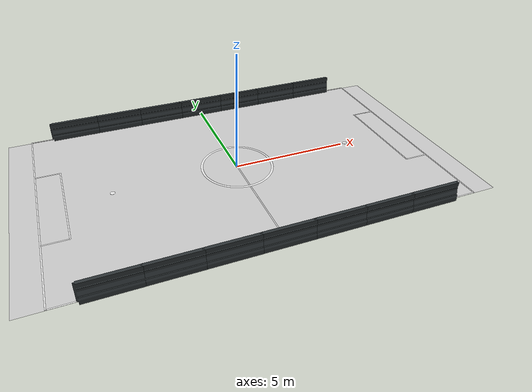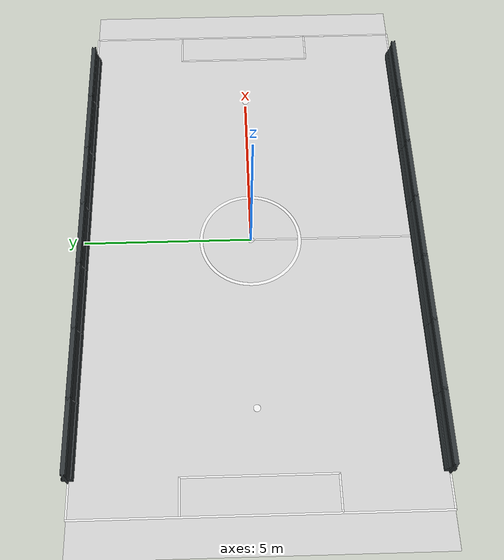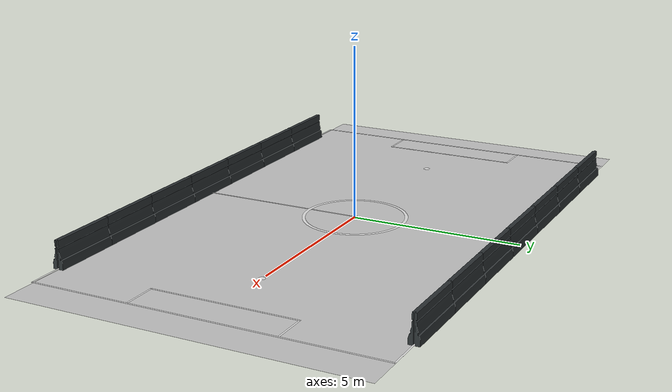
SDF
<sdf version="1.7">
 <model name="Soccer_Field_walls">
  <model name="Barrier_clone_clone">
   <link name="link">
    <inertial>
     <mass>1</mass>
     <inertia><ixx>1</ixx><ixy>0</ixy><ixz>0</ixz><iyy>1</iyy><iyz>0</iyz><izz>1</izz></inertia>
    </inertial>
    <visual name="visual">
     <geometry>
      <mesh>
       <uri>model://drc_practice_orange_jersey_barrier/meshes/jersey_barrier.dae</uri>
       <scale>0.5 1.15 0.75</scale>
      </mesh>
     </geometry>
     <material>
      <shader type="pixel"><normal_map>__default__</normal_map></shader>
      <script><name>ModelPreview_8::link::visual_MATERIAL_</name><uri>__default__</uri></script>
      <ambient>0.533 0.541 0.522 1</ambient>
      <diffuse>0.18 0.204 0.212 1</diffuse>
      <specular>0 0 0 1</specular>
      <emissive>0 0 0 1</emissive>
     </material>
    </visual>
    <collision name="collision">
     <geometry>
      <mesh>
       <uri>/home/llyttle/.gazebo/models/drc_practice_orange_jersey_barrier/meshes/jersey_barrier.dae</uri>
       <scale>0.5 1.15 0.75</scale>
      </mesh>
     </geometry>
     <surface>
      <friction>
       <ode><mu>1</mu><mu2>1</mu2><fdir1>0 0 0</fdir1><slip1>0</slip1><slip2>0</slip2></ode>
       <torsional>
        <coefficient>1</coefficient>
        <patch_radius>0</patch_radius>
        <surface_radius>0</surface_radius>
        <use_patch_radius>1</use_patch_radius>
        <ode><slip>0</slip></ode>
       </torsional>
      </friction>
      <bounce><restitution_coefficient>0</restitution_coefficient><threshold>1e+06</threshold></bounce>
      <contact>
       <collide_without_contact>0</collide_without_contact>
       <collide_without_contact_bitmask>1</collide_without_contact_bitmask>
       <collide_bitmask>1</collide_bitmask>
       <ode>
        <soft_cfm>0</soft_cfm>
        <soft_erp>0.2</soft_erp>
        <kp>1e+13</kp>
        <kd>1</kd>
        <max_vel>0.01</max_vel>
        <min_depth>0</min_depth>
       </ode>
       <bullet>
        <split_impulse>1</split_impulse>
        <split_impulse_penetration_threshold>-0.01</split_impulse_penetration_threshold>
        <soft_cfm>0</soft_cfm>
        <soft_erp>0.2</soft_erp>
        <kp>1e+13</kp>
        <kd>1</kd>
       </bullet>
      </contact>
     </surface>
    </collision>
   </link>
   <static>1</static>
   <pose>5.99542 -4.99605 0 0 0 -1.5708</pose>
  </model>
  <model name="Barrier_clone_clone_clone">
   <link name="link">
    <inertial>
     <mass>1</mass>
     <inertia><ixx>1</ixx><ixy>0</ixy><ixz>0</ixz><iyy>1</iyy><iyz>0</iyz><izz>1</izz></inertia>
    </inertial>
    <visual name="visual">
     <geometry>
      <mesh>
       <uri>model://drc_practice_orange_jersey_barrier/meshes/jersey_barrier.dae</uri>
       <scale>0.5 1.15 0.75</scale>
      </mesh>
     </geometry>
     <material>
      <shader type="pixel"><normal_map>__default__</normal_map></shader>
      <script><name>ModelPreview_8::link::visual_MATERIAL_</name><uri>__default__</uri></script>
      <ambient>0.533 0.541 0.522 1</ambient>
      <diffuse>0.18 0.204 0.212 1</diffuse>
      <specular>0 0 0 1</specular>
      <emissive>0 0 0 1</emissive>
     </material>
    </visual>
    <collision name="collision">
     <geometry>
      <mesh>
       <uri>/home/llyttle/.gazebo/models/drc_practice_orange_jersey_barrier/meshes/jersey_barrier.dae</uri>
       <scale>0.5 1.15 0.75</scale>
      </mesh>
     </geometry>
     <surface>
      <friction>
       <ode><mu>1</mu><mu2>1</mu2><fdir1>0 0 0</fdir1><slip1>0</slip1><slip2>0</slip2></ode>
       <torsional>
        <coefficient>1</coefficient>
        <patch_radius>0</patch_radius>
        <surface_radius>0</surface_radius>
        <use_patch_radius>1</use_patch_radius>
        <ode><slip>0</slip></ode>
       </torsional>
      </friction>
      <bounce><restitution_coefficient>0</restitution_coefficient><threshold>1e+06</threshold></bounce>
      <contact>
       <collide_without_contact>0</collide_without_contact>
       <collide_without_contact_bitmask>1</collide_without_contact_bitmask>
       <collide_bitmask>1</collide_bitmask>
       <ode>
        <soft_cfm>0</soft_cfm>
        <soft_erp>0.2</soft_erp>
        <kp>1e+13</kp>
        <kd>1</kd>
        <max_vel>0.01</max_vel>
        <min_depth>0</min_depth>
       </ode>
       <bullet>
        <split_impulse>1</split_impulse>
        <split_impulse_penetration_threshold>-0.01</split_impulse_penetration_threshold>
        <soft_cfm>0</soft_cfm>
        <soft_erp>0.2</soft_erp>
        <kp>1e+13</kp>
        <kd>1</kd>
       </bullet>
      </contact>
     </surface>
    </collision>
   </link>
   <static>1</static>
   <pose>3.99542 -4.99605 0 0 0 -1.5708</pose>
  </model>
  <model name="Barrier_clone_clone_clone_0">
   <link name="link">
    <inertial>
     <mass>1</mass>
     <inertia><ixx>1</ixx><ixy>0</ixy><ixz>0</ixz><iyy>1</iyy><iyz>0</iyz><izz>1</izz></inertia>
    </inertial>
    <visual name="visual">
     <geometry>
      <mesh>
       <uri>model://drc_practice_orange_jersey_barrier/meshes/jersey_barrier.dae</uri>
       <scale>0.5 1.15 0.75</scale>
      </mesh>
     </geometry>
     <material>
      <shader type="pixel"><normal_map>__default__</normal_map></shader>
      <script><name>ModelPreview_8::link::visual_MATERIAL_</name><uri>__default__</uri></script>
      <ambient>0.533 0.541 0.522 1</ambient>
      <diffuse>0.18 0.204 0.212 1</diffuse>
      <specular>0 0 0 1</specular>
      <emissive>0 0 0 1</emissive>
     </material>
    </visual>
    <collision name="collision">
     <geometry>
      <mesh>
       <uri>/home/llyttle/.gazebo/models/drc_practice_orange_jersey_barrier/meshes/jersey_barrier.dae</uri>
       <scale>0.5 1.15 0.75</scale>
      </mesh>
     </geometry>
     <surface>
      <friction>
       <ode><mu>1</mu><mu2>1</mu2><fdir1>0 0 0</fdir1><slip1>0</slip1><slip2>0</slip2></ode>
       <torsional>
        <coefficient>1</coefficient>
        <patch_radius>0</patch_radius>
        <surface_radius>0</surface_radius>
        <use_patch_radius>1</use_patch_radius>
        <ode><slip>0</slip></ode>
       </torsional>
      </friction>
      <bounce><restitution_coefficient>0</restitution_coefficient><threshold>1e+06</threshold></bounce>
      <contact>
       <collide_without_contact>0</collide_without_contact>
       <collide_without_contact_bitmask>1</collide_without_contact_bitmask>
       <collide_bitmask>1</collide_bitmask>
       <ode>
        <soft_cfm>0</soft_cfm>
        <soft_erp>0.2</soft_erp>
        <kp>1e+13</kp>
        <kd>1</kd>
        <max_vel>0.01</max_vel>
        <min_depth>0</min_depth>
       </ode>
       <bullet>
        <split_impulse>1</split_impulse>
        <split_impulse_penetration_threshold>-0.01</split_impulse_penetration_threshold>
        <soft_cfm>0</soft_cfm>
        <soft_erp>0.2</soft_erp>
        <kp>1e+13</kp>
        <kd>1</kd>
       </bullet>
      </contact>
     </surface>
    </collision>
   </link>
   <static>1</static>
   <pose>1.99542 -4.99605 0 0 0 -1.5708</pose>
  </model>
  <model name="Barrier_clone_clone_clone_1">
   <link name="link">
    <inertial>
     <mass>1</mass>
     <inertia><ixx>1</ixx><ixy>0</ixy><ixz>0</ixz><iyy>1</iyy><iyz>0</iyz><izz>1</izz></inertia>
    </inertial>
    <visual name="visual">
     <geometry>
      <mesh>
       <uri>model://drc_practice_orange_jersey_barrier/meshes/jersey_barrier.dae</uri>
       <scale>0.5 1.15 0.75</scale>
      </mesh>
     </geometry>
     <material>
      <shader type="pixel"><normal_map>__default__</normal_map></shader>
      <script><name>ModelPreview_8::link::visual_MATERIAL_</name><uri>__default__</uri></script>
      <ambient>0.533 0.541 0.522 1</ambient>
      <diffuse>0.18 0.204 0.212 1</diffuse>
      <specular>0 0 0 1</specular>
      <emissive>0 0 0 1</emissive>
     </material>
    </visual>
    <collision name="collision">
     <geometry>
      <mesh>
       <uri>/home/llyttle/.gazebo/models/drc_practice_orange_jersey_barrier/meshes/jersey_barrier.dae</uri>
       <scale>0.5 1.15 0.75</scale>
      </mesh>
     </geometry>
     <surface>
      <friction>
       <ode><mu>1</mu><mu2>1</mu2><fdir1>0 0 0</fdir1><slip1>0</slip1><slip2>0</slip2></ode>
       <torsional>
        <coefficient>1</coefficient>
        <patch_radius>0</patch_radius>
        <surface_radius>0</surface_radius>
        <use_patch_radius>1</use_patch_radius>
        <ode><slip>0</slip></ode>
       </torsional>
      </friction>
      <bounce><restitution_coefficient>0</restitution_coefficient><threshold>1e+06</threshold></bounce>
      <contact>
       <collide_without_contact>0</collide_without_contact>
       <collide_without_contact_bitmask>1</collide_without_contact_bitmask>
       <collide_bitmask>1</collide_bitmask>
       <ode>
        <soft_cfm>0</soft_cfm>
        <soft_erp>0.2</soft_erp>
        <kp>1e+13</kp>
        <kd>1</kd>
        <max_vel>0.01</max_vel>
        <min_depth>0</min_depth>
       </ode>
       <bullet>
        <split_impulse>1</split_impulse>
        <split_impulse_penetration_threshold>-0.01</split_impulse_penetration_threshold>
        <soft_cfm>0</soft_cfm>
        <soft_erp>0.2</soft_erp>
        <kp>1e+13</kp>
        <kd>1</kd>
       </bullet>
      </contact>
     </surface>
    </collision>
   </link>
   <static>1</static>
   <pose>-0.004578 -4.99605 0 0 0 -1.5708</pose>
  </model>
  <model name="Barrier_clone_clone_clone_10">
   <link name="link">
    <inertial>
     <mass>1</mass>
     <inertia><ixx>1</ixx><ixy>0</ixy><ixz>0</ixz><iyy>1</iyy><iyz>0</iyz><izz>1</izz></inertia>
    </inertial>
    <visual name="visual">
     <geometry>
      <mesh>
       <uri>model://drc_practice_orange_jersey_barrier/meshes/jersey_barrier.dae</uri>
       <scale>0.5 1.15 0.75</scale>
      </mesh>
     </geometry>
     <material>
      <shader type="pixel"><normal_map>__default__</normal_map></shader>
      <script><name>ModelPreview_8::link::visual_MATERIAL_</name><uri>__default__</uri></script>
      <ambient>0.533 0.541 0.522 1</ambient>
      <diffuse>0.18 0.204 0.212 1</diffuse>
      <specular>0 0 0 1</specular>
      <emissive>0 0 0 1</emissive>
     </material>
    </visual>
    <collision name="collision">
     <geometry>
      <mesh>
       <uri>/home/llyttle/.gazebo/models/drc_practice_orange_jersey_barrier/meshes/jersey_barrier.dae</uri>
       <scale>0.5 1.15 0.75</scale>
      </mesh>
     </geometry>
     <surface>
      <friction>
       <ode><mu>1</mu><mu2>1</mu2><fdir1>0 0 0</fdir1><slip1>0</slip1><slip2>0</slip2></ode>
       <torsional>
        <coefficient>1</coefficient>
        <patch_radius>0</patch_radius>
        <surface_radius>0</surface_radius>
        <use_patch_radius>1</use_patch_radius>
        <ode><slip>0</slip></ode>
       </torsional>
      </friction>
      <bounce><restitution_coefficient>0</restitution_coefficient><threshold>1e+06</threshold></bounce>
      <contact>
       <collide_without_contact>0</collide_without_contact>
       <collide_without_contact_bitmask>1</collide_without_contact_bitmask>
       <collide_bitmask>1</collide_bitmask>
       <ode>
        <soft_cfm>0</soft_cfm>
        <soft_erp>0.2</soft_erp>
        <kp>1e+13</kp>
        <kd>1</kd>
        <max_vel>0.01</max_vel>
        <min_depth>0</min_depth>
       </ode>
       <bullet>
        <split_impulse>1</split_impulse>
        <split_impulse_penetration_threshold>-0.01</split_impulse_penetration_threshold>
        <soft_cfm>0</soft_cfm>
        <soft_erp>0.2</soft_erp>
        <kp>1e+13</kp>
        <kd>1</kd>
       </bullet>
      </contact>
     </surface>
    </collision>
   </link>
   <static>1</static>
   <pose>-4.00458 5.00395 0 0 0 -1.5708</pose>
  </model>
  <model name="Barrier_clone_clone_clone_11">
   <link name="link">
    <inertial>
     <mass>1</mass>
     <inertia><ixx>1</ixx><ixy>0</ixy><ixz>0</ixz><iyy>1</iyy><iyz>0</iyz><izz>1</izz></inertia>
    </inertial>
    <visual name="visual">
     <geometry>
      <mesh>
       <uri>model://drc_practice_orange_jersey_barrier/meshes/jersey_barrier.dae</uri>
       <scale>0.5 1.15 0.75</scale>
      </mesh>
     </geometry>
     <material>
      <shader type="pixel"><normal_map>__default__</normal_map></shader>
      <script><name>ModelPreview_8::link::visual_MATERIAL_</name><uri>__default__</uri></script>
      <ambient>0.533 0.541 0.522 1</ambient>
      <diffuse>0.18 0.204 0.212 1</diffuse>
      <specular>0 0 0 1</specular>
      <emissive>0 0 0 1</emissive>
     </material>
    </visual>
    <collision name="collision">
     <geometry>
      <mesh>
       <uri>/home/llyttle/.gazebo/models/drc_practice_orange_jersey_barrier/meshes/jersey_barrier.dae</uri>
       <scale>0.5 1.15 0.75</scale>
      </mesh>
     </geometry>
     <surface>
      <friction>
       <ode><mu>1</mu><mu2>1</mu2><fdir1>0 0 0</fdir1><slip1>0</slip1><slip2>0</slip2></ode>
       <torsional>
        <coefficient>1</coefficient>
        <patch_radius>0</patch_radius>
        <surface_radius>0</surface_radius>
        <use_patch_radius>1</use_patch_radius>
        <ode><slip>0</slip></ode>
       </torsional>
      </friction>
      <bounce><restitution_coefficient>0</restitution_coefficient><threshold>1e+06</threshold></bounce>
      <contact>
       <collide_without_contact>0</collide_without_contact>
       <collide_without_contact_bitmask>1</collide_without_contact_bitmask>
       <collide_bitmask>1</collide_bitmask>
       <ode>
        <soft_cfm>0</soft_cfm>
        <soft_erp>0.2</soft_erp>
        <kp>1e+13</kp>
        <kd>1</kd>
        <max_vel>0.01</max_vel>
        <min_depth>0</min_depth>
       </ode>
       <bullet>
        <split_impulse>1</split_impulse>
        <split_impulse_penetration_threshold>-0.01</split_impulse_penetration_threshold>
        <soft_cfm>0</soft_cfm>
        <soft_erp>0.2</soft_erp>
        <kp>1e+13</kp>
        <kd>1</kd>
       </bullet>
      </contact>
     </surface>
    </collision>
   </link>
   <static>1</static>
   <pose>-6.00458 5.00395 0 0 0 -1.5708</pose>
  </model>
  <model name="Barrier_clone_clone_clone_2">
   <link name="link">
    <inertial>
     <mass>1</mass>
     <inertia><ixx>1</ixx><ixy>0</ixy><ixz>0</ixz><iyy>1</iyy><iyz>0</iyz><izz>1</izz></inertia>
    </inertial>
    <visual name="visual">
     <geometry>
      <mesh>
       <uri>model://drc_practice_orange_jersey_barrier/meshes/jersey_barrier.dae</uri>
       <scale>0.5 1.15 0.75</scale>
      </mesh>
     </geometry>
     <material>
      <shader type="pixel"><normal_map>__default__</normal_map></shader>
      <script><name>ModelPreview_8::link::visual_MATERIAL_</name><uri>__default__</uri></script>
      <ambient>0.533 0.541 0.522 1</ambient>
      <diffuse>0.18 0.204 0.212 1</diffuse>
      <specular>0 0 0 1</specular>
      <emissive>0 0 0 1</emissive>
     </material>
    </visual>
    <collision name="collision">
     <geometry>
      <mesh>
       <uri>/home/llyttle/.gazebo/models/drc_practice_orange_jersey_barrier/meshes/jersey_barrier.dae</uri>
       <scale>0.5 1.15 0.75</scale>
      </mesh>
     </geometry>
     <surface>
      <friction>
       <ode><mu>1</mu><mu2>1</mu2><fdir1>0 0 0</fdir1><slip1>0</slip1><slip2>0</slip2></ode>
       <torsional>
        <coefficient>1</coefficient>
        <patch_radius>0</patch_radius>
        <surface_radius>0</surface_radius>
        <use_patch_radius>1</use_patch_radius>
        <ode><slip>0</slip></ode>
       </torsional>
      </friction>
      <bounce><restitution_coefficient>0</restitution_coefficient><threshold>1e+06</threshold></bounce>
      <contact>
       <collide_without_contact>0</collide_without_contact>
       <collide_without_contact_bitmask>1</collide_without_contact_bitmask>
       <collide_bitmask>1</collide_bitmask>
       <ode>
        <soft_cfm>0</soft_cfm>
        <soft_erp>0.2</soft_erp>
        <kp>1e+13</kp>
        <kd>1</kd>
        <max_vel>0.01</max_vel>
        <min_depth>0</min_depth>
       </ode>
       <bullet>
        <split_impulse>1</split_impulse>
        <split_impulse_penetration_threshold>-0.01</split_impulse_penetration_threshold>
        <soft_cfm>0</soft_cfm>
        <soft_erp>0.2</soft_erp>
        <kp>1e+13</kp>
        <kd>1</kd>
       </bullet>
      </contact>
     </surface>
    </collision>
   </link>
   <static>1</static>
   <pose>-2.00458 -4.99605 0 0 0 -1.5708</pose>
  </model>
  <model name="Barrier_clone_clone_clone_3">
   <link name="link">
    <inertial>
     <mass>1</mass>
     <inertia><ixx>1</ixx><ixy>0</ixy><ixz>0</ixz><iyy>1</iyy><iyz>0</iyz><izz>1</izz></inertia>
    </inertial>
    <visual name="visual">
     <geometry>
      <mesh>
       <uri>model://drc_practice_orange_jersey_barrier/meshes/jersey_barrier.dae</uri>
       <scale>0.5 1.15 0.75</scale>
      </mesh>
     </geometry>
     <material>
      <shader type="pixel"><normal_map>__default__</normal_map></shader>
      <script><name>ModelPreview_8::link::visual_MATERIAL_</name><uri>__default__</uri></script>
      <ambient>0.533 0.541 0.522 1</ambient>
      <diffuse>0.18 0.204 0.212 1</diffuse>
      <specular>0 0 0 1</specular>
      <emissive>0 0 0 1</emissive>
     </material>
    </visual>
    <collision name="collision">
     <geometry>
      <mesh>
       <uri>/home/llyttle/.gazebo/models/drc_practice_orange_jersey_barrier/meshes/jersey_barrier.dae</uri>
       <scale>0.5 1.15 0.75</scale>
      </mesh>
     </geometry>
     <surface>
      <friction>
       <ode><mu>1</mu><mu2>1</mu2><fdir1>0 0 0</fdir1><slip1>0</slip1><slip2>0</slip2></ode>
       <torsional>
        <coefficient>1</coefficient>
        <patch_radius>0</patch_radius>
        <surface_radius>0</surface_radius>
        <use_patch_radius>1</use_patch_radius>
        <ode><slip>0</slip></ode>
       </torsional>
      </friction>
      <bounce><restitution_coefficient>0</restitution_coefficient><threshold>1e+06</threshold></bounce>
      <contact>
       <collide_without_contact>0</collide_without_contact>
       <collide_without_contact_bitmask>1</collide_without_contact_bitmask>
       <collide_bitmask>1</collide_bitmask>
       <ode>
        <soft_cfm>0</soft_cfm>
        <soft_erp>0.2</soft_erp>
        <kp>1e+13</kp>
        <kd>1</kd>
        <max_vel>0.01</max_vel>
        <min_depth>0</min_depth>
       </ode>
       <bullet>
        <split_impulse>1</split_impulse>
        <split_impulse_penetration_threshold>-0.01</split_impulse_penetration_threshold>
        <soft_cfm>0</soft_cfm>
        <soft_erp>0.2</soft_erp>
        <kp>1e+13</kp>
        <kd>1</kd>
       </bullet>
      </contact>
     </surface>
    </collision>
   </link>
   <static>1</static>
   <pose>-4.00458 -4.99605 0 0 0 -1.5708</pose>
  </model>
  <model name="Barrier_clone_clone_clone_4">
   <link name="link">
    <inertial>
     <mass>1</mass>
     <inertia><ixx>1</ixx><ixy>0</ixy><ixz>0</ixz><iyy>1</iyy><iyz>0</iyz><izz>1</izz></inertia>
    </inertial>
    <visual name="visual">
     <geometry>
      <mesh>
       <uri>model://drc_practice_orange_jersey_barrier/meshes/jersey_barrier.dae</uri>
       <scale>0.5 1.15 0.75</scale>
      </mesh>
     </geometry>
     <material>
      <shader type="pixel"><normal_map>__default__</normal_map></shader>
      <script><name>ModelPreview_8::link::visual_MATERIAL_</name><uri>__default__</uri></script>
      <ambient>0.533 0.541 0.522 1</ambient>
      <diffuse>0.18 0.204 0.212 1</diffuse>
      <specular>0 0 0 1</specular>
      <emissive>0 0 0 1</emissive>
     </material>
    </visual>
    <collision name="collision">
     <geometry>
      <mesh>
       <uri>/home/llyttle/.gazebo/models/drc_practice_orange_jersey_barrier/meshes/jersey_barrier.dae</uri>
       <scale>0.5 1.15 0.75</scale>
      </mesh>
     </geometry>
     <surface>
      <friction>
       <ode><mu>1</mu><mu2>1</mu2><fdir1>0 0 0</fdir1><slip1>0</slip1><slip2>0</slip2></ode>
       <torsional>
        <coefficient>1</coefficient>
        <patch_radius>0</patch_radius>
        <surface_radius>0</surface_radius>
        <use_patch_radius>1</use_patch_radius>
        <ode><slip>0</slip></ode>
       </torsional>
      </friction>
      <bounce><restitution_coefficient>0</restitution_coefficient><threshold>1e+06</threshold></bounce>
      <contact>
       <collide_without_contact>0</collide_without_contact>
       <collide_without_contact_bitmask>1</collide_without_contact_bitmask>
       <collide_bitmask>1</collide_bitmask>
       <ode>
        <soft_cfm>0</soft_cfm>
        <soft_erp>0.2</soft_erp>
        <kp>1e+13</kp>
        <kd>1</kd>
        <max_vel>0.01</max_vel>
        <min_depth>0</min_depth>
       </ode>
       <bullet>
        <split_impulse>1</split_impulse>
        <split_impulse_penetration_threshold>-0.01</split_impulse_penetration_threshold>
        <soft_cfm>0</soft_cfm>
        <soft_erp>0.2</soft_erp>
        <kp>1e+13</kp>
        <kd>1</kd>
       </bullet>
      </contact>
     </surface>
    </collision>
   </link>
   <static>1</static>
   <pose>-6.00458 -4.99605 0 0 0 -1.5708</pose>
  </model>
  <model name="Barrier_clone_clone_clone_5">
   <link name="link">
    <inertial>
     <mass>1</mass>
     <inertia><ixx>1</ixx><ixy>0</ixy><ixz>0</ixz><iyy>1</iyy><iyz>0</iyz><izz>1</izz></inertia>
    </inertial>
    <visual name="visual">
     <geometry>
      <mesh>
       <uri>model://drc_practice_orange_jersey_barrier/meshes/jersey_barrier.dae</uri>
       <scale>0.5 1.15 0.75</scale>
      </mesh>
     </geometry>
     <material>
      <shader type="pixel"><normal_map>__default__</normal_map></shader>
      <script><name>ModelPreview_8::link::visual_MATERIAL_</name><uri>__default__</uri></script>
      <ambient>0.533 0.541 0.522 1</ambient>
      <diffuse>0.18 0.204 0.212 1</diffuse>
      <specular>0 0 0 1</specular>
      <emissive>0 0 0 1</emissive>
     </material>
    </visual>
    <collision name="collision">
     <geometry>
      <mesh>
       <uri>/home/llyttle/.gazebo/models/drc_practice_orange_jersey_barrier/meshes/jersey_barrier.dae</uri>
       <scale>0.5 1.15 0.75</scale>
      </mesh>
     </geometry>
     <surface>
      <friction>
       <ode><mu>1</mu><mu2>1</mu2><fdir1>0 0 0</fdir1><slip1>0</slip1><slip2>0</slip2></ode>
       <torsional>
        <coefficient>1</coefficient>
        <patch_radius>0</patch_radius>
        <surface_radius>0</surface_radius>
        <use_patch_radius>1</use_patch_radius>
        <ode><slip>0</slip></ode>
       </torsional>
      </friction>
      <bounce><restitution_coefficient>0</restitution_coefficient><threshold>1e+06</threshold></bounce>
      <contact>
       <collide_without_contact>0</collide_without_contact>
       <collide_without_contact_bitmask>1</collide_without_contact_bitmask>
       <collide_bitmask>1</collide_bitmask>
       <ode>
        <soft_cfm>0</soft_cfm>
        <soft_erp>0.2</soft_erp>
        <kp>1e+13</kp>
        <kd>1</kd>
        <max_vel>0.01</max_vel>
        <min_depth>0</min_depth>
       </ode>
       <bullet>
        <split_impulse>1</split_impulse>
        <split_impulse_penetration_threshold>-0.01</split_impulse_penetration_threshold>
        <soft_cfm>0</soft_cfm>
        <soft_erp>0.2</soft_erp>
        <kp>1e+13</kp>
        <kd>1</kd>
       </bullet>
      </contact>
     </surface>
    </collision>
   </link>
   <static>1</static>
   <pose>5.99542 5.00395 0 0 0 -1.5708</pose>
  </model>
  <model name="Barrier_clone_clone_clone_6">
   <link name="link">
    <inertial>
     <mass>1</mass>
     <inertia><ixx>1</ixx><ixy>0</ixy><ixz>0</ixz><iyy>1</iyy><iyz>0</iyz><izz>1</izz></inertia>
    </inertial>
    <visual name="visual">
     <geometry>
      <mesh>
       <uri>model://drc_practice_orange_jersey_barrier/meshes/jersey_barrier.dae</uri>
       <scale>0.5 1.15 0.75</scale>
      </mesh>
     </geometry>
     <material>
      <shader type="pixel"><normal_map>__default__</normal_map></shader>
      <script><name>ModelPreview_8::link::visual_MATERIAL_</name><uri>__default__</uri></script>
      <ambient>0.533 0.541 0.522 1</ambient>
      <diffuse>0.18 0.204 0.212 1</diffuse>
      <specular>0 0 0 1</specular>
      <emissive>0 0 0 1</emissive>
     </material>
    </visual>
    <collision name="collision">
     <geometry>
      <mesh>
       <uri>/home/llyttle/.gazebo/models/drc_practice_orange_jersey_barrier/meshes/jersey_barrier.dae</uri>
       <scale>0.5 1.15 0.75</scale>
      </mesh>
     </geometry>
     <surface>
      <friction>
       <ode><mu>1</mu><mu2>1</mu2><fdir1>0 0 0</fdir1><slip1>0</slip1><slip2>0</slip2></ode>
       <torsional>
        <coefficient>1</coefficient>
        <patch_radius>0</patch_radius>
        <surface_radius>0</surface_radius>
        <use_patch_radius>1</use_patch_radius>
        <ode><slip>0</slip></ode>
       </torsional>
      </friction>
      <bounce><restitution_coefficient>0</restitution_coefficient><threshold>1e+06</threshold></bounce>
      <contact>
       <collide_without_contact>0</collide_without_contact>
       <collide_without_contact_bitmask>1</collide_without_contact_bitmask>
       <collide_bitmask>1</collide_bitmask>
       <ode>
        <soft_cfm>0</soft_cfm>
        <soft_erp>0.2</soft_erp>
        <kp>1e+13</kp>
        <kd>1</kd>
        <max_vel>0.01</max_vel>
        <min_depth>0</min_depth>
       </ode>
       <bullet>
        <split_impulse>1</split_impulse>
        <split_impulse_penetration_threshold>-0.01</split_impulse_penetration_threshold>
        <soft_cfm>0</soft_cfm>
        <soft_erp>0.2</soft_erp>
        <kp>1e+13</kp>
        <kd>1</kd>
       </bullet>
      </contact>
     </surface>
    </collision>
   </link>
   <static>1</static>
   <pose>3.99542 5.00395 0 0 0 -1.5708</pose>
  </model>
  <model name="Barrier_clone_clone_clone_7">
   <link name="link">
    <inertial>
     <mass>1</mass>
     <inertia><ixx>1</ixx><ixy>0</ixy><ixz>0</ixz><iyy>1</iyy><iyz>0</iyz><izz>1</izz></inertia>
    </inertial>
    <visual name="visual">
     <geometry>
      <mesh>
       <uri>model://drc_practice_orange_jersey_barrier/meshes/jersey_barrier.dae</uri>
       <scale>0.5 1.15 0.75</scale>
      </mesh>
     </geometry>
     <material>
      <shader type="pixel"><normal_map>__default__</normal_map></shader>
      <script><name>ModelPreview_8::link::visual_MATERIAL_</name><uri>__default__</uri></script>
      <ambient>0.533 0.541 0.522 1</ambient>
      <diffuse>0.18 0.204 0.212 1</diffuse>
      <specular>0 0 0 1</specular>
      <emissive>0 0 0 1</emissive>
     </material>
    </visual>
    <collision name="collision">
     <geometry>
      <mesh>
       <uri>/home/llyttle/.gazebo/models/drc_practice_orange_jersey_barrier/meshes/jersey_barrier.dae</uri>
       <scale>0.5 1.15 0.75</scale>
      </mesh>
     </geometry>
     <surface>
      <friction>
       <ode><mu>1</mu><mu2>1</mu2><fdir1>0 0 0</fdir1><slip1>0</slip1><slip2>0</slip2></ode>
       <torsional>
        <coefficient>1</coefficient>
        <patch_radius>0</patch_radius>
        <surface_radius>0</surface_radius>
        <use_patch_radius>1</use_patch_radius>
        <ode><slip>0</slip></ode>
       </torsional>
      </friction>
      <bounce><restitution_coefficient>0</restitution_coefficient><threshold>1e+06</threshold></bounce>
      <contact>
       <collide_without_contact>0</collide_without_contact>
       <collide_without_contact_bitmask>1</collide_without_contact_bitmask>
       <collide_bitmask>1</collide_bitmask>
       <ode>
        <soft_cfm>0</soft_cfm>
        <soft_erp>0.2</soft_erp>
        <kp>1e+13</kp>
        <kd>1</kd>
        <max_vel>0.01</max_vel>
        <min_depth>0</min_depth>
       </ode>
       <bullet>
        <split_impulse>1</split_impulse>
        <split_impulse_penetration_threshold>-0.01</split_impulse_penetration_threshold>
        <soft_cfm>0</soft_cfm>
        <soft_erp>0.2</soft_erp>
        <kp>1e+13</kp>
        <kd>1</kd>
       </bullet>
      </contact>
     </surface>
    </collision>
   </link>
   <static>1</static>
   <pose>1.99542 5.00395 0 0 0 -1.5708</pose>
  </model>
  <model name="Barrier_clone_clone_clone_8">
   <link name="link">
    <inertial>
     <mass>1</mass>
     <inertia><ixx>1</ixx><ixy>0</ixy><ixz>0</ixz><iyy>1</iyy><iyz>0</iyz><izz>1</izz></inertia>
    </inertial>
    <visual name="visual">
     <geometry>
      <mesh>
       <uri>model://drc_practice_orange_jersey_barrier/meshes/jersey_barrier.dae</uri>
       <scale>0.5 1.15 0.75</scale>
      </mesh>
     </geometry>
     <material>
      <shader type="pixel"><normal_map>__default__</normal_map></shader>
      <script><name>ModelPreview_8::link::visual_MATERIAL_</name><uri>__default__</uri></script>
      <ambient>0.533 0.541 0.522 1</ambient>
      <diffuse>0.18 0.204 0.212 1</diffuse>
      <specular>0 0 0 1</specular>
      <emissive>0 0 0 1</emissive>
     </material>
    </visual>
    <collision name="collision">
     <geometry>
      <mesh>
       <uri>/home/llyttle/.gazebo/models/drc_practice_orange_jersey_barrier/meshes/jersey_barrier.dae</uri>
       <scale>0.5 1.15 0.75</scale>
      </mesh>
     </geometry>
     <surface>
      <friction>
       <ode><mu>1</mu><mu2>1</mu2><fdir1>0 0 0</fdir1><slip1>0</slip1><slip2>0</slip2></ode>
       <torsional>
        <coefficient>1</coefficient>
        <patch_radius>0</patch_radius>
        <surface_radius>0</surface_radius>
        <use_patch_radius>1</use_patch_radius>
        <ode><slip>0</slip></ode>
       </torsional>
      </friction>
      <bounce><restitution_coefficient>0</restitution_coefficient><threshold>1e+06</threshold></bounce>
      <contact>
       <collide_without_contact>0</collide_without_contact>
       <collide_without_contact_bitmask>1</collide_without_contact_bitmask>
       <collide_bitmask>1</collide_bitmask>
       <ode>
        <soft_cfm>0</soft_cfm>
        <soft_erp>0.2</soft_erp>
        <kp>1e+13</kp>
        <kd>1</kd>
        <max_vel>0.01</max_vel>
        <min_depth>0</min_depth>
       </ode>
       <bullet>
        <split_impulse>1</split_impulse>
        <split_impulse_penetration_threshold>-0.01</split_impulse_penetration_threshold>
        <soft_cfm>0</soft_cfm>
        <soft_erp>0.2</soft_erp>
        <kp>1e+13</kp>
        <kd>1</kd>
       </bullet>
      </contact>
     </surface>
    </collision>
   </link>
   <static>1</static>
   <pose>-0.004578 5.00395 0 0 0 -1.5708</pose>
  </model>
  <model name="Barrier_clone_clone_clone_9">
   <link name="link">
    <inertial>
     <mass>1</mass>
     <inertia><ixx>1</ixx><ixy>0</ixy><ixz>0</ixz><iyy>1</iyy><iyz>0</iyz><izz>1</izz></inertia>
    </inertial>
    <visual name="visual">
     <geometry>
      <mesh>
       <uri>model://drc_practice_orange_jersey_barrier/meshes/jersey_barrier.dae</uri>
       <scale>0.5 1.15 0.75</scale>
      </mesh>
     </geometry>
     <material>
      <shader type="pixel"><normal_map>__default__</normal_map></shader>
      <script><name>ModelPreview_8::link::visual_MATERIAL_</name><uri>__default__</uri></script>
      <ambient>0.533 0.541 0.522 1</ambient>
      <diffuse>0.18 0.204 0.212 1</diffuse>
      <specular>0 0 0 1</specular>
      <emissive>0 0 0 1</emissive>
     </material>
    </visual>
    <collision name="collision">
     <geometry>
      <mesh>
       <uri>/home/llyttle/.gazebo/models/drc_practice_orange_jersey_barrier/meshes/jersey_barrier.dae</uri>
       <scale>0.5 1.15 0.75</scale>
      </mesh>
     </geometry>
     <surface>
      <friction>
       <ode><mu>1</mu><mu2>1</mu2><fdir1>0 0 0</fdir1><slip1>0</slip1><slip2>0</slip2></ode>
       <torsional>
        <coefficient>1</coefficient>
        <patch_radius>0</patch_radius>
        <surface_radius>0</surface_radius>
        <use_patch_radius>1</use_patch_radius>
        <ode><slip>0</slip></ode>
       </torsional>
      </friction>
      <bounce><restitution_coefficient>0</restitution_coefficient><threshold>1e+06</threshold></bounce>
      <contact>
       <collide_without_contact>0</collide_without_contact>
       <collide_without_contact_bitmask>1</collide_without_contact_bitmask>
       <collide_bitmask>1</collide_bitmask>
       <ode>
        <soft_cfm>0</soft_cfm>
        <soft_erp>0.2</soft_erp>
        <kp>1e+13</kp>
        <kd>1</kd>
        <max_vel>0.01</max_vel>
        <min_depth>0</min_depth>
       </ode>
       <bullet>
        <split_impulse>1</split_impulse>
        <split_impulse_penetration_threshold>-0.01</split_impulse_penetration_threshold>
        <soft_cfm>0</soft_cfm>
        <soft_erp>0.2</soft_erp>
        <kp>1e+13</kp>
        <kd>1</kd>
       </bullet>
      </contact>
     </surface>
    </collision>
   </link>
   <static>1</static>
   <pose>-2.00458 5.00395 0 0 0 -1.5708</pose>
  </model>
  <model name="soccer_field_grass">
   <model name="RoboCup 14 SPL Field">
    <static>1</static>
    <link name="field">
     <pose>0 0 0.01 0 -0 0</pose>
     <collision name="collision">
      <geometry><plane><normal>0 0 1</normal><size>18 10</size></plane></geometry>
      <surface><friction><ode><mu>100</mu><mu2>50</mu2></ode></friction></surface>
     </collision>
     <visual name="carpet">
      <cast_shadows>0</cast_shadows>
      <geometry><plane><normal>0 0 1</normal><size>18 10</size></plane></geometry>
      <material>
       <script>
        <uri>model://robocup09_spl_field/materials/scripts/</uri>
        <uri>model://robocup09_spl_field/materials/textures/</uri>
        <name>RoboCup/Carpet</name>
       </script>
      </material>
     </visual>
     <visual name="sideline_1">
      <pose>0 5 0.011 0 -0 0</pose>
      <cast_shadows>0</cast_shadows>
      <geometry><plane><normal>0 0 1</normal><size>16.05 0.05</size></plane></geometry>
      <material>
       <script><uri>file://media/materials/scripts/gazebo.material</uri><name>Gazebo/White</name></script>
      </material>
     </visual>
     <visual name="sideline_2">
      <pose>0 -5 0.011 0 -0 0</pose>
      <cast_shadows>0</cast_shadows>
      <geometry><plane><normal>0 0 1</normal><size>16.05 0.05</size></plane></geometry>
      <material>
       <script><uri>file://media/materials/scripts/gazebo.material</uri><name>Gazebo/White</name></script>
      </material>
     </visual>
     <visual name="endline_1">
      <pose>-8 0 0.011 0 -0 0</pose>
      <cast_shadows>0</cast_shadows>
      <geometry><plane><normal>0 0 1</normal><size>0.05 10.05</size></plane></geometry>
      <material>
       <script><uri>file://media/materials/scripts/gazebo.material</uri><name>Gazebo/White</name></script>
      </material>
     </visual>
     <visual name="endline_2">
      <pose>8 0 0.011 0 -0 0</pose>
      <cast_shadows>0</cast_shadows>
      <geometry><plane><normal>0 0 1</normal><size>0.05 10.05</size></plane></geometry>
      <material>
       <script><uri>file://media/materials/scripts/gazebo.material</uri><name>Gazebo/White</name></script>
      </material>
     </visual>
     <visual name="halfway_line">
      <pose>0 0 0.011 0 -0 0</pose>
      <cast_shadows>0</cast_shadows>
      <geometry><plane><normal>0 0 1</normal><size>0.05 10.05</size></plane></geometry>
      <material>
       <script><uri>file://media/materials/scripts/gazebo.material</uri><name>Gazebo/White</name></script>
      </material>
     </visual>
     <visual name="area_1_line_a">
      <pose>-7 0 0.011 0 -0 0</pose>
      <cast_shadows>0</cast_shadows>
      <geometry><plane><normal>0 0 1</normal><size>0.05 4.25</size></plane></geometry>
      <material>
       <script><uri>file://media/materials/scripts/gazebo.material</uri><name>Gazebo/White</name></script>
      </material>
     </visual>
     <visual name="area_2_line_a">
      <pose>-7.5 2.1 0.011 0 -0 0</pose>
      <cast_shadows>0</cast_shadows>
      <geometry><plane><normal>0 0 1</normal><size>1 0.05</size></plane></geometry>
      <material>
       <script><uri>file://media/materials/scripts/gazebo.material</uri><name>Gazebo/White</name></script>
      </material>
     </visual>
     <visual name="area_3_line_a">
      <pose>-7.5 -2.1 0.011 0 -0 0</pose>
      <cast_shadows>0</cast_shadows>
      <geometry><plane><normal>0 0 1</normal><size>1 0.05</size></plane></geometry>
      <material>
       <script><uri>file://media/materials/scripts/gazebo.material</uri><name>Gazebo/White</name></script>
      </material>
     </visual>
     <visual name="area_1_line_b">
      <pose>7 0 0.011 0 -0 0</pose>
      <cast_shadows>0</cast_shadows>
      <geometry><plane><normal>0 0 1</normal><size>0.05 4.25</size></plane></geometry>
      <material>
       <script><uri>file://media/materials/scripts/gazebo.material</uri><name>Gazebo/White</name></script>
      </material>
     </visual>
     <visual name="area_2_line_b">
      <pose>7.5 2.1 0.011 0 -0 0</pose>
      <cast_shadows>0</cast_shadows>
      <geometry><plane><normal>0 0 1</normal><size>1 0.05</size></plane></geometry>
      <material>
       <script><uri>file://media/materials/scripts/gazebo.material</uri><name>Gazebo/White</name></script>
      </material>
     </visual>
     <visual name="area_3_line_b">
      <pose>7.5 -2.1 0.011 0 -0 0</pose>
      <cast_shadows>0</cast_shadows>
      <geometry><plane><normal>0 0 1</normal><size>1 0.05</size></plane></geometry>
      <material>
       <script><uri>file://media/materials/scripts/gazebo.material</uri><name>Gazebo/White</name></script>
      </material>
     </visual>
     <visual name="penalty_a">
      <pose>-5.2 0 0.01 0 -0 0</pose>
      <cast_shadows>0</cast_shadows>
      <geometry><cylinder><radius>0.1</radius><length>0.0005</length></cylinder></geometry>
      <material>
       <script><uri>file://media/materials/scripts/gazebo.material</uri><name>Gazebo/White</name></script>
      </material>
     </visual>
     <visual name="penalty_b">
      <pose>5.2 0 0.01 0 -0 0</pose>
      <cast_shadows>0</cast_shadows>
      <geometry><cylinder><radius>0.1</radius><length>0.0005</length></cylinder></geometry>
      <material>
       <script><uri>file://media/materials/scripts/gazebo.material</uri><name>Gazebo/White</name></script>
      </material>
     </visual>
     <visual name="center_point">
      <pose>0 0 0.01 0 -0 0</pose>
      <cast_shadows>0</cast_shadows>
      <geometry><cylinder><radius>0.1</radius><length>0.0005</length></cylinder></geometry>
      <material>
       <script><uri>file://media/materials/scripts/gazebo.material</uri><name>Gazebo/White</name></script>
      </material>
     </visual>
     <visual name="center_circle">
      <pose>0 0 0.005 0 -0 0</pose>
      <cast_shadows>0</cast_shadows>
      <geometry>
       <mesh><scale>2 2 0.75</scale><uri>model://robocup14_spl_field/meshes/circle.dae</uri></mesh>
      </geometry>
      <material>
       <script><uri>file://media/materials/scripts/gazebo.material</uri><name>Gazebo/White</name></script>
      </material>
     </visual>
    </link>
   </model>
   <static>0</static>
  </model>
  <static>1</static>
 </model>
</sdf>
